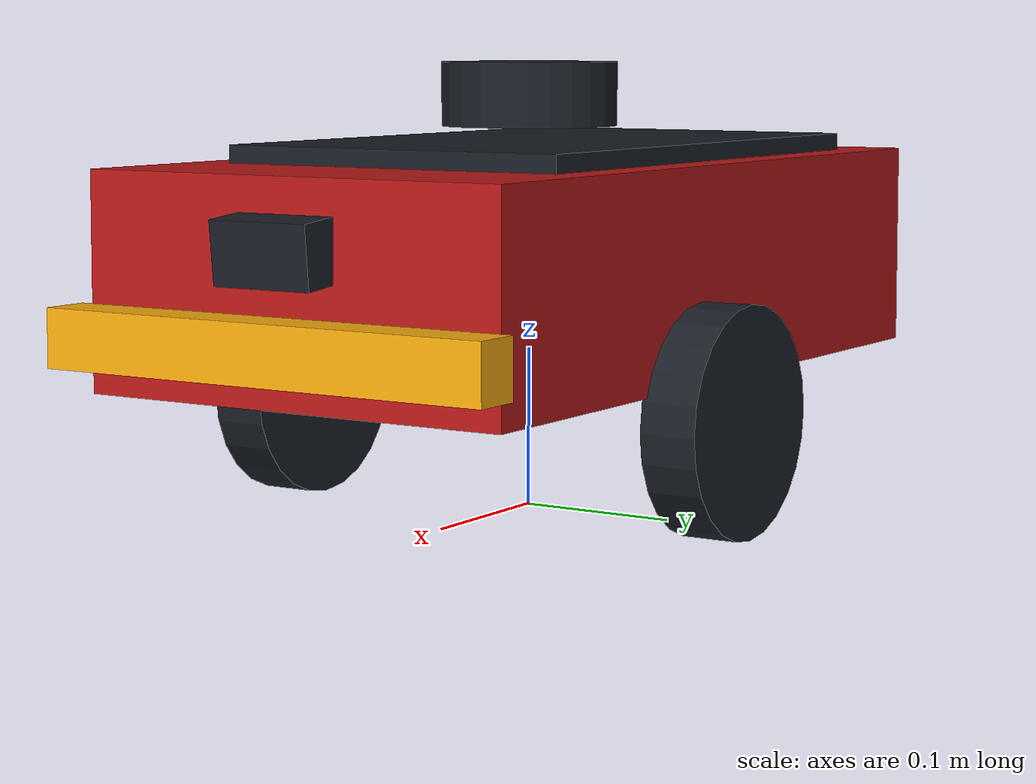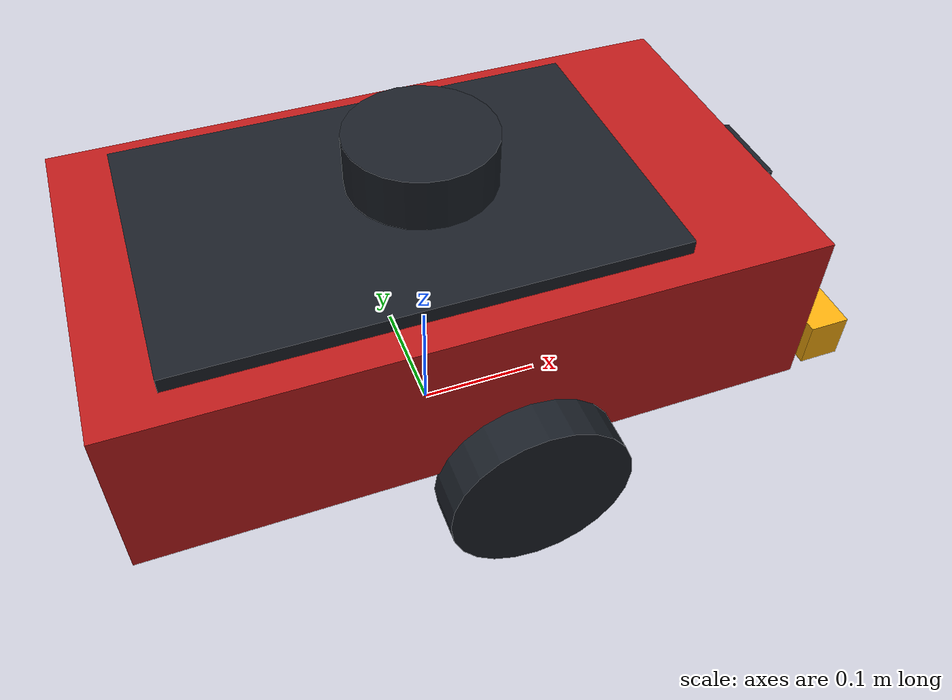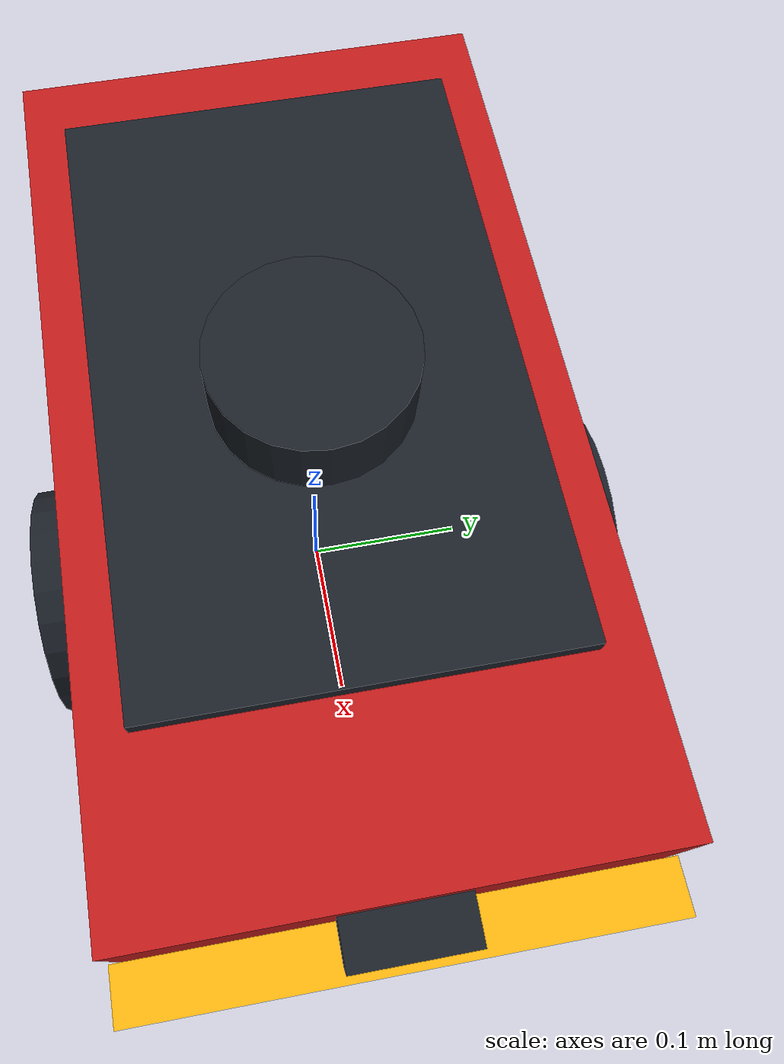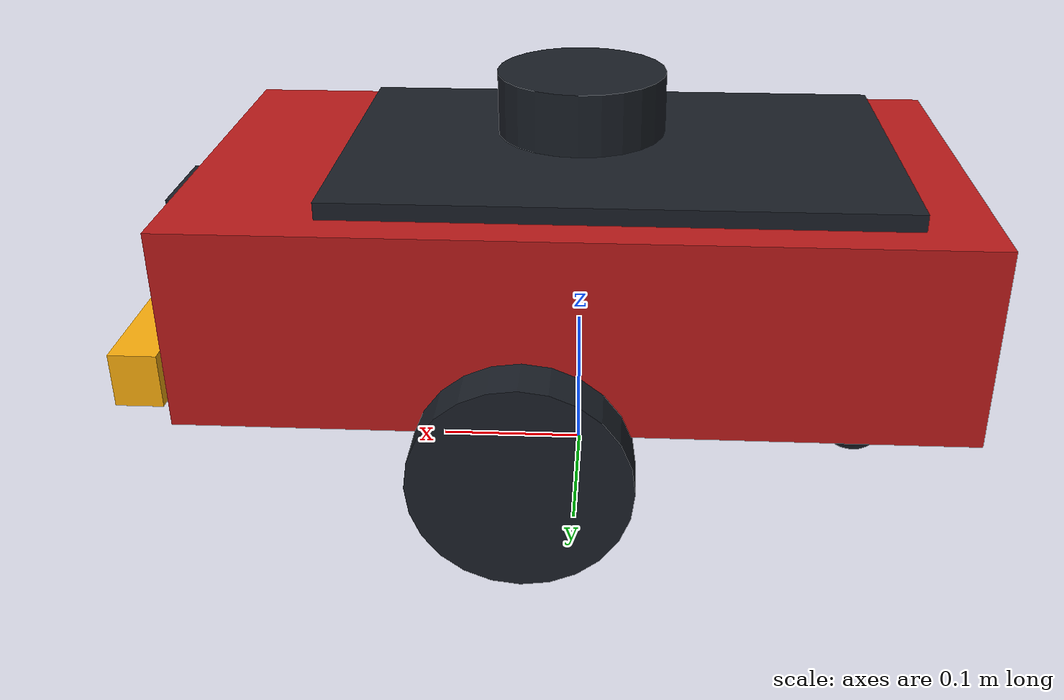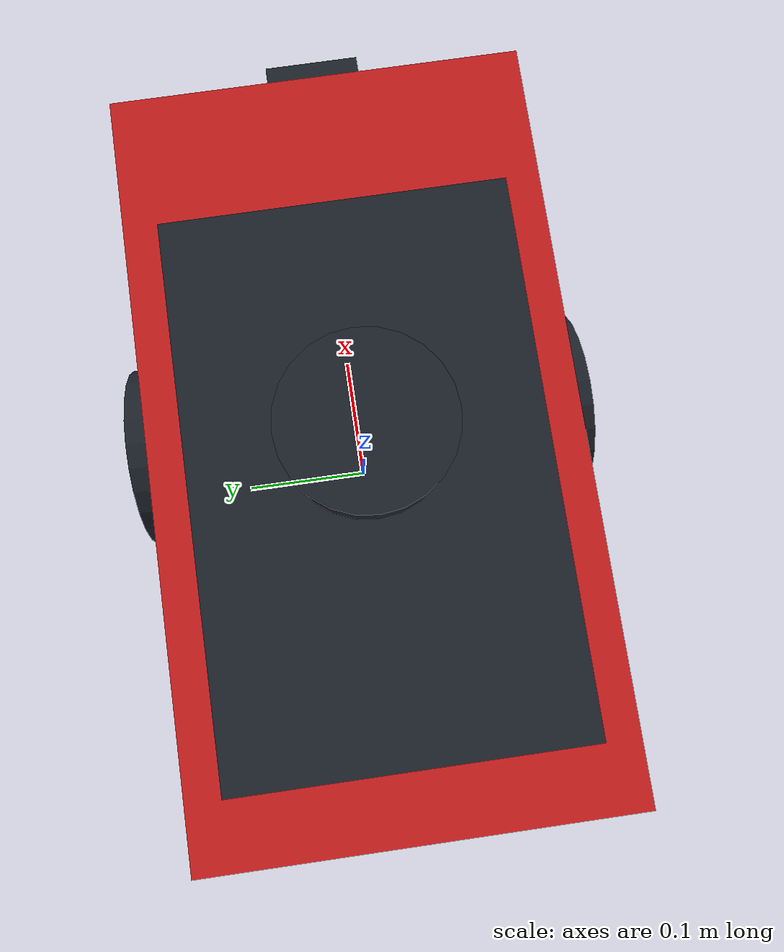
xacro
<?xml version="1.0"?>
<robot xmlns:xacro="http://www.ros.org/wiki/xacro" name="firescout_fs01">
  <!-- Coordinate convention: X forward, Y left, Z upward. Origin at floor. -->
  <xacro:property name="wheel_r" value="0.07"/>
  <xacro:property name="wheel_sep" value="0.31"/>
  <material name="red"><color rgba="0.73 0.10 0.10 1"/></material>
  <material name="black"><color rgba="0.10 0.12 0.15 1"/></material>
  <material name="yellow"><color rgba="0.98 0.68 0.05 1"/></material>
  <material name="blue"><color rgba="0.16 0.56 0.72 1"/></material>
  <link name="base_link">
    <inertial><origin xyz="0 0 0.155"/><mass value="8.8"/><inertia ixx="0.128" ixy="0" ixz="0" iyy="0.231" iyz="0" izz="0.295"/></inertial>
    <visual><origin xyz="0 0 0.155"/><geometry><box size="0.50 0.28 0.13"/></geometry><material name="red"/></visual>
    <collision><origin xyz="0 0 0.155"/><geometry><box size="0.50 0.28 0.13"/></geometry></collision>
  </link>
  <link name="top_panel"><visual><origin xyz="0 0 0"/><geometry><box size="0.36 0.23 0.012"/></geometry><material name="black"/></visual></link>
  <joint name="top_panel_joint" type="fixed"><parent link="base_link"/><child link="top_panel"/><origin xyz="-0.025 0 0.225"/></joint>
  <xacro:macro name="wheel" params="side sign">
    <link name="${side}_wheel_link">
      <inertial><mass value="0.45"/><inertia ixx="0.0013" ixy="0" ixz="0" iyy="0.0013" iyz="0" izz="0.0013"/></inertial>
      <visual><origin rpy="1.57079632679 0 0"/><geometry><cylinder radius="${wheel_r}" length="0.035"/></geometry><material name="black"/></visual>
      <collision><origin rpy="1.57079632679 0 0"/><geometry><cylinder radius="${wheel_r}" length="0.035"/></geometry></collision>
    </link>
    <joint name="${side}_wheel_joint" type="continuous"><parent link="base_link"/><child link="${side}_wheel_link"/><origin xyz="0.03 ${sign * wheel_sep/2} 0.07"/><axis xyz="0 1 0"/></joint>
  </xacro:macro>
  <xacro:wheel side="left" sign="1"/>
  <xacro:wheel side="right" sign="-1"/>
  <!-- Simplified spherical rear support. Friction tuned for first simulation. -->
  <link name="caster_link">
    <inertial><mass value="0.15"/><inertia ixx="0.00004" ixy="0" ixz="0" iyy="0.00004" iyz="0" izz="0.00004"/></inertial>
    <visual><geometry><sphere radius="0.025"/></geometry><material name="black"/></visual>
    <collision><geometry><sphere radius="0.025"/></geometry></collision>
  </link>
  <joint name="caster_joint" type="fixed"><parent link="base_link"/><child link="caster_link"/><origin xyz="-0.20 0 0.025"/></joint>
  <link name="lidar_link">
    <visual><geometry><cylinder radius="0.055" length="0.04"/></geometry><material name="black"/></visual>
  </link>
  <joint name="lidar_joint" type="fixed"><parent link="base_link"/><child link="lidar_link"/><origin xyz="0 0 0.26"/></joint>
  <link name="camera_link"><visual><geometry><box size="0.037 0.065 0.037"/></geometry><material name="black"/></visual></link>
  <joint name="camera_joint" type="fixed"><parent link="base_link"/><child link="camera_link"/><origin xyz="0.255 0 0.18" rpy="0 0.10 0"/></joint>
  <link name="imu_link"><visual><geometry><box size="0.035 0.035 0.015"/></geometry><material name="blue"/></visual></link>
  <joint name="imu_joint" type="fixed"><parent link="base_link"/><child link="imu_link"/><origin xyz="0 0 0.16"/></joint>
  <link name="bumper_link">
    <visual><geometry><box size="0.03 0.295 0.035"/></geometry><material name="yellow"/></visual>
    <collision><geometry><box size="0.03 0.295 0.035"/></geometry></collision>
  </link>
  <joint name="bumper_joint" type="fixed"><parent link="base_link"/><child link="bumper_link"/><origin xyz="0.265 0 0.125"/></joint>
  <gazebo reference="base_link"><material>Gazebo/Red</material></gazebo>
  <gazebo reference="caster_link"><mu1>0.02</mu1><mu2>0.02</mu2></gazebo>
  <gazebo reference="left_wheel_link"><mu1>1.1</mu1><mu2>1.1</mu2></gazebo>
  <gazebo reference="right_wheel_link"><mu1>1.1</mu1><mu2>1.1</mu2></gazebo>
  <gazebo>
    <plugin filename="gz-sim-diff-drive-system" name="gz::sim::systems::DiffDrive">
      <left_joint>left_wheel_joint</left_joint><right_joint>right_wheel_joint</right_joint>
      <wheel_separation>${wheel_sep}</wheel_separation><wheel_radius>${wheel_r}</wheel_radius>
      <topic>/cmd_vel</topic><odom_topic>/odom</odom_topic><tf_topic>/tf</tf_topic><odom_publish_frequency>30</odom_publish_frequency>
    </plugin>
    <plugin filename="gz-sim-joint-state-publisher-system" name="gz::sim::systems::JointStatePublisher"><topic>/joint_states</topic></plugin>
  </gazebo>
  <gazebo reference="lidar_link">
    <sensor name="scan" type="gpu_lidar"><pose>0 0 0.06 0 0 0</pose><always_on>true</always_on><update_rate>8</update_rate><topic>/scan</topic><gz_frame_id>lidar_link</gz_frame_id>
      <lidar><scan><horizontal><samples>360</samples><resolution>1</resolution><min_angle>-3.14159</min_angle><max_angle>3.14159</max_angle></horizontal></scan><range><min>0.10</min><max>8.0</max><resolution>0.01</resolution></range></lidar>
    </sensor>
  </gazebo>
  <gazebo reference="camera_link">
    <sensor name="front_camera" type="camera"><always_on>true</always_on><update_rate>10</update_rate><topic>/camera/image_raw</topic><gz_frame_id>camera_link</gz_frame_id>
      <camera><horizontal_fov>1.2</horizontal_fov><image><width>640</width><height>480</height><format>R8G8B8</format></image><clip><near>0.1</near><far>15</far></clip></camera>
    </sensor>
  </gazebo>
  <gazebo reference="imu_link"><sensor name="imu" type="imu"><always_on>true</always_on><update_rate>50</update_rate><topic>/imu/data</topic><gz_frame_id>imu_link</gz_frame_id></sensor></gazebo>
  <gazebo reference="bumper_link"><sensor name="front_contact" type="contact"><always_on>true</always_on><update_rate>20</update_rate><topic>/bumper/contacts</topic><contact><collision>base_link_fixed_joint_lump__bumper_link_collision_1</collision></contact></sensor></gazebo>
</robot>
